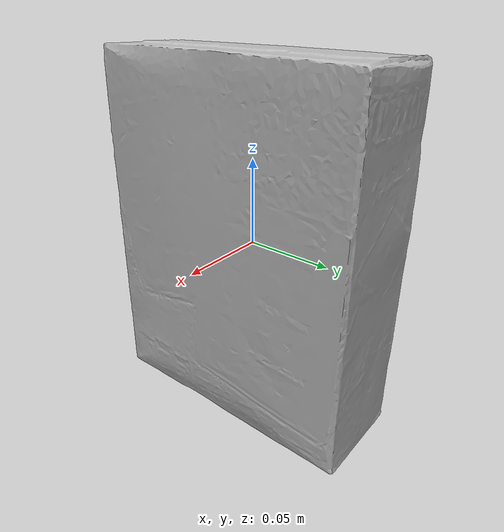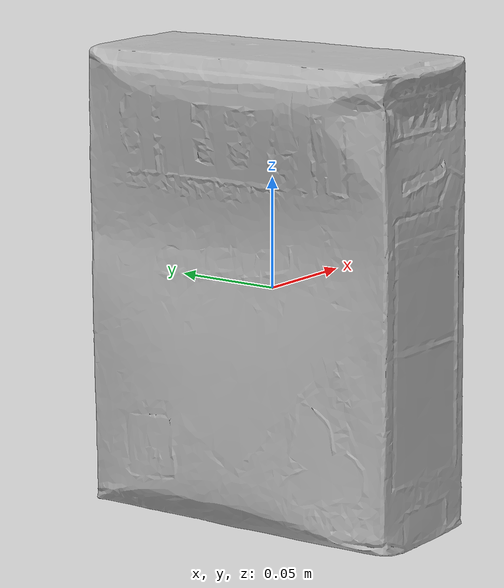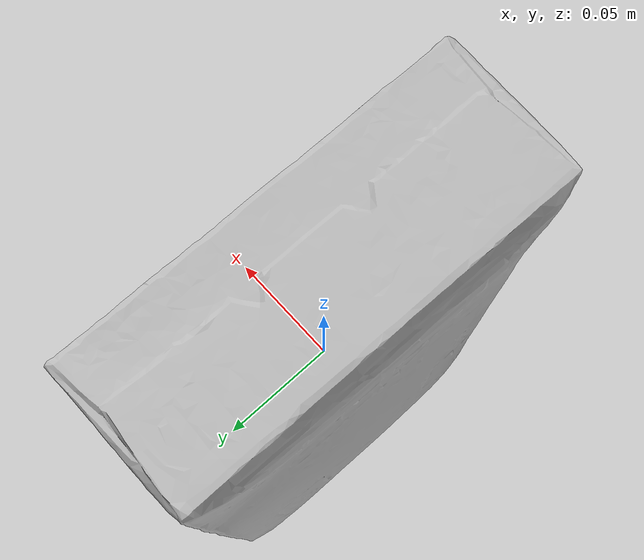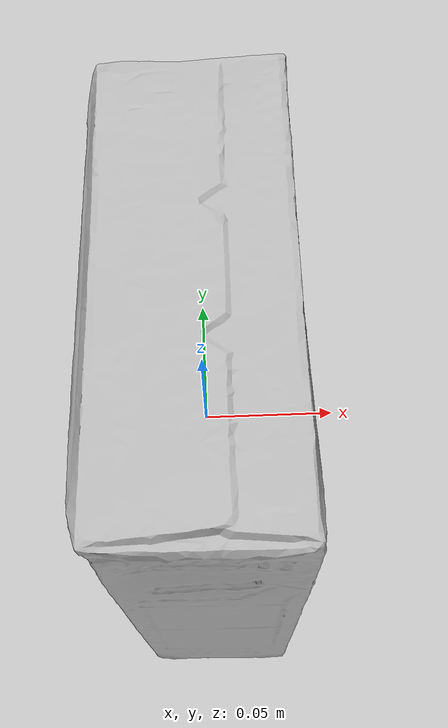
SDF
<?xml version="1.0"?>
<sdf version='1.6'>
<model name="003_cracker_box">

<property name='c_x' value='0.025'/>
<property name='c_y' value='0.075'/>
<property name='c_z' value='0.1'/>

  <link name="base_link_cracker">
    <inertial>
      <mass>0.411</mass>
      <inertia>
        <ixx>0.001736</ixx>
        <ixy>0</ixy>
        <ixz>0</ixz>
        <iyy>0.001098</iyy>
        <iyz>0</iyz>
        <izz>0.002481</izz>
      </inertia>
    </inertial>

    <visual name='base_link_cracker'>
	<pose frame=''>0 0 0 0 0 0</pose>
      <geometry>
        <mesh>
          <uri>../meshes/003_cracker_box_textured_updated.obj</uri>
        </mesh>
      </geometry>
    </visual>

    <collision name='box_collision'>
      <pose>0 0 0 0 0 0</pose>
      <geometry>
        <box>
          <size>0.07 0.16 0.205</size>
        </box>
      </geometry>
      <material>
        <diffuse>0 1 0 1.0</diffuse>
      </material>
    </collision>

   <collision name='point_collision1'>
      <pose>0.025 0.075 0.1 0 0 0 </pose>
      <geometry>
        <sphere><radius>1e-7</radius></sphere>
      </geometry>
    </collision>

    <collision name='point_collision2'>
      <pose>-0.025 -0.075 0.1 0 0 0 </pose>
      <geometry>
        <sphere><radius>1e-7</radius></sphere>
      </geometry>
    </collision>

    <collision name='point_collision3'>
      <pose>-0.025 0.075 0.1 0 0 0 </pose>
      <geometry>
        <sphere><radius>1e-7</radius></sphere>
      </geometry>
    </collision>

    <collision name='point_collision4'>
      <pose>0.025 -0.075 0.1 0 0 0 </pose>
      <geometry>
        <sphere><radius>1e-7</radius></sphere>
      </geometry>
    </collision>

    <collision name='point_collision5'>
      <pose>0.025 0.075 -0.1 0 0 0 </pose>
      <geometry>
        <sphere><radius>1e-7</radius></sphere>
      </geometry>
    </collision>

    <collision name='point_collision6'>
      <pose>-0.025 -0.075 -0.1 0 0 0 </pose>
      <geometry>
        <sphere><radius>1e-7</radius></sphere>
      </geometry>
    </collision>

    <collision name='point_collision7'>
      <pose>0.025 -0.075 -0.1 0 0 0 </pose>
      <geometry>
        <sphere><radius>1e-7</radius></sphere>
      </geometry>
    </collision>

    <collision name='point_collision8'>
      <pose>-0.025 0.075 -0.1 0 0 0 </pose>
      <geometry>
        <sphere><radius>1e-7</radius></sphere>
      </geometry>
    </collision>

   </link>
</model>
</sdf>
